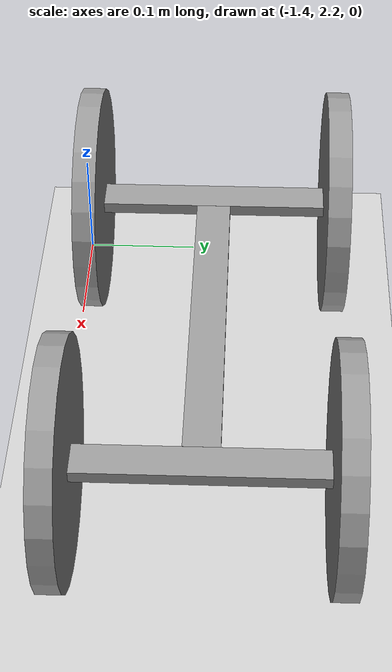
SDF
<sdf version="1.6">
 <world name="default">
  <model name="ground_plane">
   <static>1</static>
   <link name="link">
    <collision name="collision">
     <geometry><plane><normal>0 0 1</normal><size>100 100</size></plane></geometry>
     <surface><friction><ode><mu>100</mu><mu2>50</mu2></ode></friction></surface>
    </collision>
    <visual name="visual">
     <cast_shadows>0</cast_shadows>
     <geometry><plane><normal>0 0 1</normal><size>100 100</size></plane></geometry>
     <material>
      <script><uri>file://media/materials/scripts/gazebo.material</uri><name>Gazebo/Grey</name></script>
     </material>
    </visual>
   </link>
  </model>
  <model name="mycar2_clone">
   <link name="link_2_clone">
    <pose>-0.030624 0.173413 0 1.5707 -0 0</pose>
    <inertial>
     <mass>1</mass>
     <inertia><ixx>0.145833</ixx><ixy>0</ixy><ixz>0</ixz><iyy>0.145833</iyy><iyz>0</iyz><izz>0.125</izz></inertia>
    </inertial>
    <visual name="visual">
     <geometry><cylinder><radius>0.1</radius><length>0.02</length></cylinder></geometry>
     <material>
      <lighting>1</lighting>
      <script><uri>file://media/materials/scripts/gazebo.material</uri><name>Gazebo/Grey</name></script>
      <shader type="pixel"><normal_map>__default__</normal_map></shader>
      <ambient>0.3 0.3 0.3 1</ambient>
      <diffuse>0.7 0.7 0.7 1</diffuse>
      <specular>0.01 0.01 0.01 1</specular>
      <emissive>0 0 0 1</emissive>
     </material>
    </visual>
    <collision name="collision">
     <geometry><cylinder><radius>0.1</radius><length>0.02</length></cylinder></geometry>
     <surface>
      <friction>
       <ode><mu>1</mu><mu2>1</mu2><fdir1>0 0 0</fdir1><slip1>0</slip1><slip2>0</slip2></ode>
       <torsional>
        <coefficient>1</coefficient>
        <patch_radius>0</patch_radius>
        <surface_radius>0</surface_radius>
        <use_patch_radius>1</use_patch_radius>
        <ode><slip>0</slip></ode>
       </torsional>
      </friction>
      <bounce><restitution_coefficient>0</restitution_coefficient><threshold>1e+06</threshold></bounce>
      <contact>
       <collide_without_contact>0</collide_without_contact>
       <collide_without_contact_bitmask>1</collide_without_contact_bitmask>
       <collide_bitmask>1</collide_bitmask>
       <ode>
        <soft_cfm>0</soft_cfm>
        <soft_erp>0.2</soft_erp>
        <kp>1e+13</kp>
        <kd>1</kd>
        <max_vel>0.01</max_vel>
        <min_depth>0</min_depth>
       </ode>
       <bullet>
        <split_impulse>1</split_impulse>
        <split_impulse_penetration_threshold>-0.01</split_impulse_penetration_threshold>
        <soft_cfm>0</soft_cfm>
        <soft_erp>0.2</soft_erp>
        <kp>1e+13</kp>
        <kd>1</kd>
       </bullet>
      </contact>
     </surface>
    </collision>
   </link>
   <link name="link_2_clone_0">
    <pose>0.2994 -0.046607 0 1.5707 -0 0</pose>
    <inertial>
     <mass>1</mass>
     <inertia><ixx>0.145833</ixx><ixy>0</ixy><ixz>0</ixz><iyy>0.145833</iyy><iyz>0</iyz><izz>0.125</izz></inertia>
    </inertial>
    <visual name="visual">
     <geometry><cylinder><radius>0.1</radius><length>0.02</length></cylinder></geometry>
     <material>
      <lighting>1</lighting>
      <script><uri>file://media/materials/scripts/gazebo.material</uri><name>Gazebo/Grey</name></script>
      <shader type="pixel"><normal_map>__default__</normal_map></shader>
      <ambient>0.3 0.3 0.3 1</ambient>
      <diffuse>0.7 0.7 0.7 1</diffuse>
      <specular>0.01 0.01 0.01 1</specular>
      <emissive>0 0 0 1</emissive>
     </material>
    </visual>
    <collision name="collision">
     <geometry><cylinder><radius>0.1</radius><length>0.02</length></cylinder></geometry>
     <surface>
      <friction>
       <ode><mu>1</mu><mu2>1</mu2><fdir1>0 0 0</fdir1><slip1>0</slip1><slip2>0</slip2></ode>
       <torsional>
        <coefficient>1</coefficient>
        <patch_radius>0</patch_radius>
        <surface_radius>0</surface_radius>
        <use_patch_radius>1</use_patch_radius>
        <ode><slip>0</slip></ode>
       </torsional>
      </friction>
      <bounce><restitution_coefficient>0</restitution_coefficient><threshold>1e+06</threshold></bounce>
      <contact>
       <collide_without_contact>0</collide_without_contact>
       <collide_without_contact_bitmask>1</collide_without_contact_bitmask>
       <collide_bitmask>1</collide_bitmask>
       <ode>
        <soft_cfm>0</soft_cfm>
        <soft_erp>0.2</soft_erp>
        <kp>1e+13</kp>
        <kd>1</kd>
        <max_vel>0.01</max_vel>
        <min_depth>0</min_depth>
       </ode>
       <bullet>
        <split_impulse>1</split_impulse>
        <split_impulse_penetration_threshold>-0.01</split_impulse_penetration_threshold>
        <soft_cfm>0</soft_cfm>
        <soft_erp>0.2</soft_erp>
        <kp>1e+13</kp>
        <kd>1</kd>
       </bullet>
      </contact>
     </surface>
    </collision>
   </link>
   <link name="link_2_clone_1">
    <pose>0.2994 0.173413 0 1.5707 -0 0</pose>
    <inertial>
     <mass>1</mass>
     <inertia><ixx>0.145833</ixx><ixy>0</ixy><ixz>0</ixz><iyy>0.145833</iyy><iyz>0</iyz><izz>0.125</izz></inertia>
    </inertial>
    <visual name="visual">
     <geometry><cylinder><radius>0.1</radius><length>0.02</length></cylinder></geometry>
     <material>
      <lighting>1</lighting>
      <script><uri>file://media/materials/scripts/gazebo.material</uri><name>Gazebo/Grey</name></script>
      <shader type="pixel"><normal_map>__default__</normal_map></shader>
      <ambient>0.3 0.3 0.3 1</ambient>
      <diffuse>0.7 0.7 0.7 1</diffuse>
      <specular>0.01 0.01 0.01 1</specular>
      <emissive>0 0 0 1</emissive>
     </material>
    </visual>
    <collision name="collision">
     <geometry><cylinder><radius>0.1</radius><length>0.02</length></cylinder></geometry>
     <surface>
      <friction>
       <ode><mu>1</mu><mu2>1</mu2><fdir1>0 0 0</fdir1><slip1>0</slip1><slip2>0</slip2></ode>
       <torsional>
        <coefficient>1</coefficient>
        <patch_radius>0</patch_radius>
        <surface_radius>0</surface_radius>
        <use_patch_radius>1</use_patch_radius>
        <ode><slip>0</slip></ode>
       </torsional>
      </friction>
      <bounce><restitution_coefficient>0</restitution_coefficient><threshold>1e+06</threshold></bounce>
      <contact>
       <collide_without_contact>0</collide_without_contact>
       <collide_without_contact_bitmask>1</collide_without_contact_bitmask>
       <collide_bitmask>1</collide_bitmask>
       <ode>
        <soft_cfm>0</soft_cfm>
        <soft_erp>0.2</soft_erp>
        <kp>1e+13</kp>
        <kd>1</kd>
        <max_vel>0.01</max_vel>
        <min_depth>0</min_depth>
       </ode>
       <bullet>
        <split_impulse>1</split_impulse>
        <split_impulse_penetration_threshold>-0.01</split_impulse_penetration_threshold>
        <soft_cfm>0</soft_cfm>
        <soft_erp>0.2</soft_erp>
        <kp>1e+13</kp>
        <kd>1</kd>
       </bullet>
      </contact>
     </surface>
    </collision>
   </link>
   <link name="link_2_clone_clone">
    <pose>-0.030624 -0.046607 0 1.5707 -0 0</pose>
    <inertial>
     <mass>1</mass>
     <inertia><ixx>0.145833</ixx><ixy>0</ixy><ixz>0</ixz><iyy>0.145833</iyy><iyz>0</iyz><izz>0.125</izz></inertia>
    </inertial>
    <visual name="visual">
     <geometry><cylinder><radius>0.1</radius><length>0.02</length></cylinder></geometry>
     <material>
      <lighting>1</lighting>
      <script><uri>file://media/materials/scripts/gazebo.material</uri><name>Gazebo/Grey</name></script>
      <shader type="pixel"><normal_map>__default__</normal_map></shader>
      <ambient>0.3 0.3 0.3 1</ambient>
      <diffuse>0.7 0.7 0.7 1</diffuse>
      <specular>0.01 0.01 0.01 1</specular>
      <emissive>0 0 0 1</emissive>
     </material>
    </visual>
    <collision name="collision">
     <geometry><cylinder><radius>0.1</radius><length>0.02</length></cylinder></geometry>
     <surface>
      <friction>
       <ode><mu>1</mu><mu2>1</mu2><fdir1>0 0 0</fdir1><slip1>0</slip1><slip2>0</slip2></ode>
       <torsional>
        <coefficient>1</coefficient>
        <patch_radius>0</patch_radius>
        <surface_radius>0</surface_radius>
        <use_patch_radius>1</use_patch_radius>
        <ode><slip>0</slip></ode>
       </torsional>
      </friction>
      <bounce><restitution_coefficient>0</restitution_coefficient><threshold>1e+06</threshold></bounce>
      <contact>
       <collide_without_contact>0</collide_without_contact>
       <collide_without_contact_bitmask>1</collide_without_contact_bitmask>
       <collide_bitmask>1</collide_bitmask>
       <ode>
        <soft_cfm>0</soft_cfm>
        <soft_erp>0.2</soft_erp>
        <kp>1e+13</kp>
        <kd>1</kd>
        <max_vel>0.01</max_vel>
        <min_depth>0</min_depth>
       </ode>
       <bullet>
        <split_impulse>1</split_impulse>
        <split_impulse_penetration_threshold>-0.01</split_impulse_penetration_threshold>
        <soft_cfm>0</soft_cfm>
        <soft_erp>0.2</soft_erp>
        <kp>1e+13</kp>
        <kd>1</kd>
       </bullet>
      </contact>
     </surface>
    </collision>
   </link>
   <link name="link_3_clone">
    <pose>0.134388 0.063403 0 0 -0 1.57</pose>
    <inertial>
     <mass>1</mass>
     <inertia>
      <ixx>0.166667</ixx>
      <ixy>0</ixy>
      <ixz>0</ixz>
      <iyy>0.166667</iyy>
      <iyz>0</iyz>
      <izz>0.166667</izz>
     </inertia>
    </inertial>
    <visual name="visual">
     <geometry><box><size>0.03 0.3 0.01</size></box></geometry>
     <material>
      <lighting>1</lighting>
      <script><uri>file://media/materials/scripts/gazebo.material</uri><name>Gazebo/Grey</name></script>
      <shader type="pixel"><normal_map>__default__</normal_map></shader>
      <ambient>0.3 0.3 0.3 1</ambient>
      <diffuse>0.7 0.7 0.7 1</diffuse>
      <specular>0.01 0.01 0.01 1</specular>
      <emissive>0 0 0 1</emissive>
     </material>
    </visual>
    <collision name="collision">
     <geometry><box><size>0.03 0.3 0.01</size></box></geometry>
     <surface>
      <friction>
       <ode><mu>1</mu><mu2>1</mu2><fdir1>0 0 0</fdir1><slip1>0</slip1><slip2>0</slip2></ode>
       <torsional>
        <coefficient>1</coefficient>
        <patch_radius>0</patch_radius>
        <surface_radius>0</surface_radius>
        <use_patch_radius>1</use_patch_radius>
        <ode><slip>0</slip></ode>
       </torsional>
      </friction>
      <bounce><restitution_coefficient>0</restitution_coefficient><threshold>1e+06</threshold></bounce>
      <contact>
       <collide_without_contact>0</collide_without_contact>
       <collide_without_contact_bitmask>1</collide_without_contact_bitmask>
       <collide_bitmask>1</collide_bitmask>
       <ode>
        <soft_cfm>0</soft_cfm>
        <soft_erp>0.2</soft_erp>
        <kp>1e+13</kp>
        <kd>1</kd>
        <max_vel>0.01</max_vel>
        <min_depth>0</min_depth>
       </ode>
       <bullet>
        <split_impulse>1</split_impulse>
        <split_impulse_penetration_threshold>-0.01</split_impulse_penetration_threshold>
        <soft_cfm>0</soft_cfm>
        <soft_erp>0.2</soft_erp>
        <kp>1e+13</kp>
        <kd>1</kd>
       </bullet>
      </contact>
     </surface>
    </collision>
   </link>
   <link name="link_3_clone_0">
    <pose>0.299404 0.063404 0 0 -0 0</pose>
    <inertial>
     <mass>1</mass>
     <inertia>
      <ixx>0.166667</ixx>
      <ixy>0</ixy>
      <ixz>0</ixz>
      <iyy>0.166667</iyy>
      <iyz>0</iyz>
      <izz>0.166667</izz>
     </inertia>
    </inertial>
    <visual name="visual">
     <geometry><box><size>0.03 0.2 0.01</size></box></geometry>
     <material>
      <lighting>1</lighting>
      <script><uri>file://media/materials/scripts/gazebo.material</uri><name>Gazebo/Grey</name></script>
      <shader type="pixel"><normal_map>__default__</normal_map></shader>
      <ambient>0.3 0.3 0.3 1</ambient>
      <diffuse>0.7 0.7 0.7 1</diffuse>
      <specular>0.01 0.01 0.01 1</specular>
      <emissive>0 0 0 1</emissive>
     </material>
    </visual>
    <collision name="collision">
     <geometry><box><size>0.03 0.2 0.01</size></box></geometry>
     <surface>
      <friction>
       <ode><mu>1</mu><mu2>1</mu2><fdir1>0 0 0</fdir1><slip1>0</slip1><slip2>0</slip2></ode>
       <torsional>
        <coefficient>1</coefficient>
        <patch_radius>0</patch_radius>
        <surface_radius>0</surface_radius>
        <use_patch_radius>1</use_patch_radius>
        <ode><slip>0</slip></ode>
       </torsional>
      </friction>
      <bounce><restitution_coefficient>0</restitution_coefficient><threshold>1e+06</threshold></bounce>
      <contact>
       <collide_without_contact>0</collide_without_contact>
       <collide_without_contact_bitmask>1</collide_without_contact_bitmask>
       <collide_bitmask>1</collide_bitmask>
       <ode>
        <soft_cfm>0</soft_cfm>
        <soft_erp>0.2</soft_erp>
        <kp>1e+13</kp>
        <kd>1</kd>
        <max_vel>0.01</max_vel>
        <min_depth>0</min_depth>
       </ode>
       <bullet>
        <split_impulse>1</split_impulse>
        <split_impulse_penetration_threshold>-0.01</split_impulse_penetration_threshold>
        <soft_cfm>0</soft_cfm>
        <soft_erp>0.2</soft_erp>
        <kp>1e+13</kp>
        <kd>1</kd>
       </bullet>
      </contact>
     </surface>
    </collision>
   </link>
   <link name="link_3_clone_0_clone">
    <pose>-0.030624 0.063403 0 0 -0 0</pose>
    <inertial>
     <mass>1</mass>
     <inertia>
      <ixx>0.166667</ixx>
      <ixy>0</ixy>
      <ixz>0</ixz>
      <iyy>0.166667</iyy>
      <iyz>0</iyz>
      <izz>0.166667</izz>
     </inertia>
    </inertial>
    <visual name="visual">
     <geometry><box><size>0.03 0.2 0.01</size></box></geometry>
     <material>
      <lighting>1</lighting>
      <script><uri>file://media/materials/scripts/gazebo.material</uri><name>Gazebo/Grey</name></script>
      <shader type="pixel"><normal_map>__default__</normal_map></shader>
      <ambient>0.3 0.3 0.3 1</ambient>
      <diffuse>0.7 0.7 0.7 1</diffuse>
      <specular>0.01 0.01 0.01 1</specular>
      <emissive>0 0 0 1</emissive>
     </material>
    </visual>
    <collision name="collision">
     <geometry><box><size>0.03 0.2 0.01</size></box></geometry>
     <surface>
      <friction>
       <ode><mu>1</mu><mu2>1</mu2><fdir1>0 0 0</fdir1><slip1>0</slip1><slip2>0</slip2></ode>
       <torsional>
        <coefficient>1</coefficient>
        <patch_radius>0</patch_radius>
        <surface_radius>0</surface_radius>
        <use_patch_radius>1</use_patch_radius>
        <ode><slip>0</slip></ode>
       </torsional>
      </friction>
      <bounce><restitution_coefficient>0</restitution_coefficient><threshold>1e+06</threshold></bounce>
      <contact>
       <collide_without_contact>0</collide_without_contact>
       <collide_without_contact_bitmask>1</collide_without_contact_bitmask>
       <collide_bitmask>1</collide_bitmask>
       <ode>
        <soft_cfm>0</soft_cfm>
        <soft_erp>0.2</soft_erp>
        <kp>1e+13</kp>
        <kd>1</kd>
        <max_vel>0.01</max_vel>
        <min_depth>0</min_depth>
       </ode>
       <bullet>
        <split_impulse>1</split_impulse>
        <split_impulse_penetration_threshold>-0.01</split_impulse_penetration_threshold>
        <soft_cfm>0</soft_cfm>
        <soft_erp>0.2</soft_erp>
        <kp>1e+13</kp>
        <kd>1</kd>
       </bullet>
      </contact>
     </surface>
    </collision>
   </link>
   <joint name="link_3_clone_0_JOINT_10" type="revolute">
    <parent>link_3_clone_0</parent>
    <child>link_2_clone_0</child>
    <axis>
     <xyz>0 0 1</xyz>
     <use_parent_model_frame>0</use_parent_model_frame>
     <limit>
      <lower>-1.79769e+308</lower>
      <upper>1.79769e+308</upper>
      <effort>-1</effort>
      <velocity>-1</velocity>
     </limit>
     <dynamics>
      <spring_reference>0</spring_reference>
      <spring_stiffness>0</spring_stiffness>
      <damping>0</damping>
     </dynamics>
    </axis>
    <physics>
     <ode><limit><cfm>0</cfm><erp>0.2</erp></limit><suspension><cfm>0</cfm><erp>0.2</erp></suspension></ode>
    </physics>
   </joint>
   <joint name="link_3_clone_0_JOINT_9" type="revolute">
    <parent>link_3_clone_0</parent>
    <child>link_2_clone_1</child>
    <axis>
     <xyz>0 0 1</xyz>
     <use_parent_model_frame>0</use_parent_model_frame>
     <limit>
      <lower>-1.79769e+308</lower>
      <upper>1.79769e+308</upper>
      <effort>-1</effort>
      <velocity>-1</velocity>
     </limit>
     <dynamics>
      <spring_reference>0</spring_reference>
      <spring_stiffness>0</spring_stiffness>
      <damping>0</damping>
     </dynamics>
    </axis>
    <physics>
     <ode><limit><cfm>0</cfm><erp>0.2</erp></limit><suspension><cfm>0</cfm><erp>0.2</erp></suspension></ode>
    </physics>
   </joint>
   <joint name="link_3_clone_0_clone_JOINT_14" type="revolute">
    <parent>link_3_clone_0_clone</parent>
    <child>link_2_clone</child>
    <axis>
     <xyz>0 0 1</xyz>
     <use_parent_model_frame>0</use_parent_model_frame>
     <limit>
      <lower>-1.79769e+308</lower>
      <upper>1.79769e+308</upper>
      <effort>-1</effort>
      <velocity>-1</velocity>
     </limit>
     <dynamics>
      <spring_reference>0</spring_reference>
      <spring_stiffness>0</spring_stiffness>
      <damping>0</damping>
     </dynamics>
    </axis>
    <physics>
     <ode><limit><cfm>0</cfm><erp>0.2</erp></limit><suspension><cfm>0</cfm><erp>0.2</erp></suspension></ode>
    </physics>
   </joint>
   <joint name="link_3_clone_0_clone_JOINT_16" type="revolute">
    <parent>link_3_clone_0_clone</parent>
    <child>link_2_clone_clone</child>
    <axis>
     <xyz>0 0 1</xyz>
     <use_parent_model_frame>0</use_parent_model_frame>
     <limit>
      <lower>-1.79769e+308</lower>
      <upper>1.79769e+308</upper>
      <effort>-1</effort>
      <velocity>-1</velocity>
     </limit>
     <dynamics>
      <spring_reference>0</spring_reference>
      <spring_stiffness>0</spring_stiffness>
      <damping>0</damping>
     </dynamics>
    </axis>
    <physics>
     <ode><limit><cfm>0</cfm><erp>0.2</erp></limit><suspension><cfm>0</cfm><erp>0.2</erp></suspension></ode>
    </physics>
   </joint>
   <joint name="link_3_clone_JOINT_13" type="fixed">
    <parent>link_3_clone</parent>
    <child>link_3_clone_0_clone</child>
    <physics>
     <ode><limit><cfm>0</cfm><erp>0.2</erp></limit><suspension><cfm>0</cfm><erp>0.2</erp></suspension></ode>
    </physics>
   </joint>
   <joint name="link_3_clone_JOINT_6" type="fixed">
    <parent>link_3_clone</parent>
    <child>link_3_clone_0</child>
    <physics>
     <ode><limit><cfm>0</cfm><erp>0.2</erp></limit><suspension><cfm>0</cfm><erp>0.2</erp></suspension></ode>
    </physics>
   </joint>
   <static>0</static>
   <pose>-1.31613 2.2585 0.1 0 -0 0</pose>
  </model>
 </world>
</sdf>
